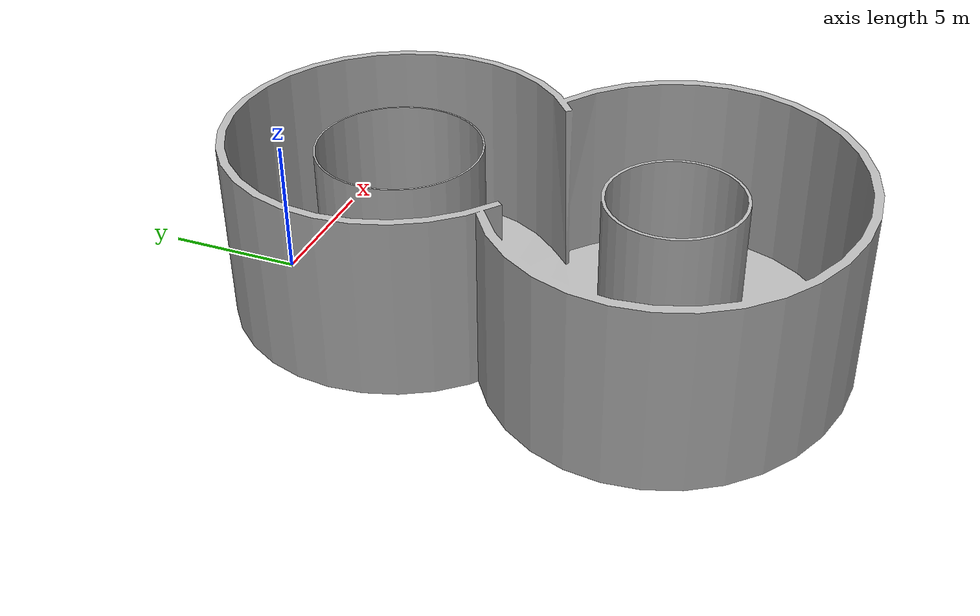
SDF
<?xml version="1.0"?>
<sdf version="1.6">
  <model name="Eight">
    <pose>0 0 0 0 0 0</pose>
    <static>true</static>
    <link name="link">
      <collision name="collision">
        <geometry>
          <mesh>
            <uri>model://Eight/meshes/eight.dae</uri>
         </mesh>
        </geometry>
      </collision>
      <visual name="visual">
        <geometry>
          <mesh>
            <uri>model://Eight/meshes/eight.dae</uri>
         </mesh>
        </geometry>
      </visual>
    </link>
  </model>
 </sdf>
